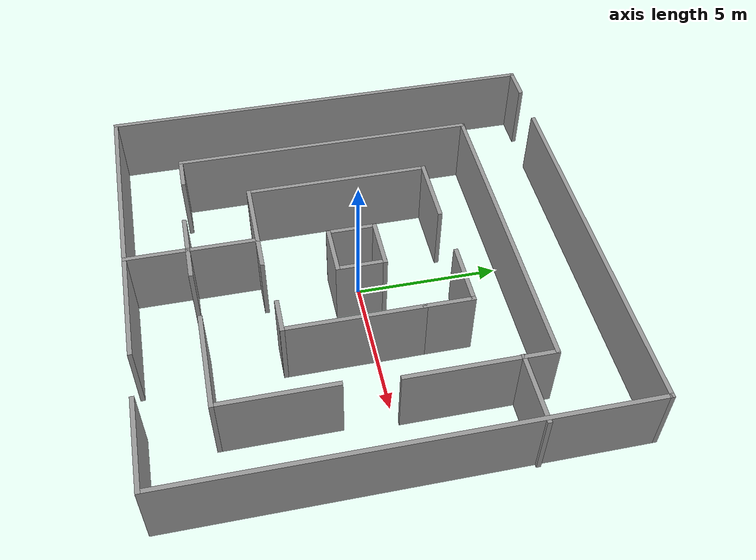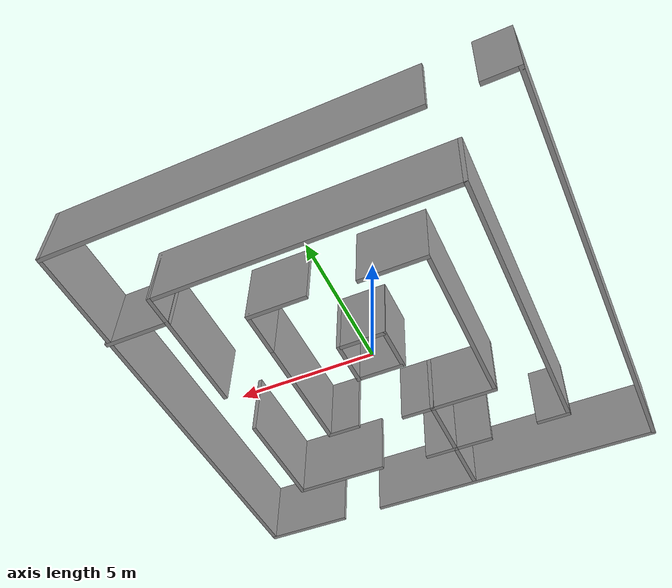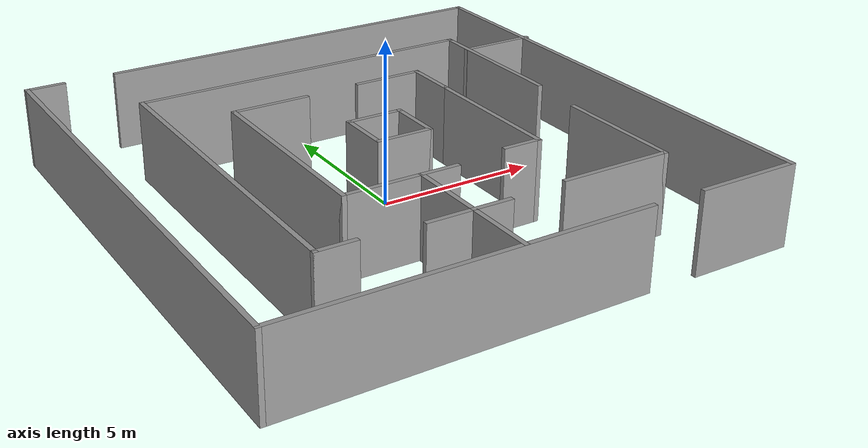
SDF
<?xml version='1.0'?>
<sdf version='1.6'>
  <model name='simple_maze'>
    <pose frame=''>0.056086 0.045725 0 0 -0 0</pose>
    <link name='Wall_0'>
      <collision name='Wall_0_Collision'>
        <geometry>
          <box>
            <size>1.25 0.15 2.5</size>
          </box>
        </geometry>
        <pose frame=''>0 0 1.25 0 -0 0</pose>
      </collision>
      <visual name='Wall_0_Visual'>
        <pose frame=''>0 0 1.25 0 -0 0</pose>
        <geometry>
          <box>
            <size>1.25 0.15 2.5</size>
          </box>
        </geometry>
        <material>
          <script>
            <uri>file://media/materials/scripts/gazebo.material</uri>
            <name>Gazebo/Grey</name>
          </script>
          <ambient>1 1 1 1</ambient>
        </material>
        <meta>
          <layer>0</layer>
        </meta>
      </visual>
      <pose frame=''>-7.32298 7.80815 0 0 -0 3.14159</pose>
    </link>
    <link name='Wall_1'>
      <collision name='Wall_1_Collision'>
        <geometry>
          <box>
            <size>15.75 0.15 2.5</size>
          </box>
        </geometry>
        <pose frame=''>0 0 1.25 0 -0 0</pose>
      </collision>
      <visual name='Wall_1_Visual'>
        <pose frame=''>0 0 1.25 0 -0 0</pose>
        <geometry>
          <box>
            <size>15.75 0.15 2.5</size>
          </box>
        </geometry>
        <material>
          <script>
            <uri>file://media/materials/scripts/gazebo.material</uri>
            <name>Gazebo/Grey</name>
          </script>
          <ambient>1 1 1 1</ambient>
        </material>
        <meta>
          <layer>0</layer>
        </meta>
      </visual>
      <pose frame=''>-7.87298 0.008147 0 0 -0 -1.5708</pose>
    </link>
    <link name='Wall_10'>
      <collision name='Wall_10_Collision'>
        <geometry>
          <box>
            <size>1.5 0.15 2.5</size>
          </box>
        </geometry>
        <pose frame=''>0 0 1.25 0 -0 0</pose>
      </collision>
      <visual name='Wall_10_Visual'>
        <pose frame=''>0 0 1.25 0 -0 0</pose>
        <geometry>
          <box>
            <size>1.5 0.15 2.5</size>
          </box>
        </geometry>
        <material>
          <script>
            <uri>file://media/materials/scripts/gazebo.material</uri>
            <name>Gazebo/Grey</name>
          </script>
          <ambient>1 1 1 1</ambient>
        </material>
        <meta>
          <layer>0</layer>
        </meta>
      </visual>
      <pose frame=''>-1.62087 -5.68541 0 0 -0 3.14159</pose>
    </link>
    <link name='Wall_12'>
      <collision name='Wall_12_Collision'>
        <geometry>
          <box>
            <size>1.25 0.15 2.5</size>
          </box>
        </geometry>
        <pose frame=''>0 0 1.25 0 -0 0</pose>
      </collision>
      <visual name='Wall_12_Visual'>
        <pose frame=''>0 0 1.25 0 -0 0</pose>
        <geometry>
          <box>
            <size>1.25 0.15 2.5</size>
          </box>
        </geometry>
        <material>
          <script>
            <uri>file://media/materials/scripts/gazebo.material</uri>
            <name>Gazebo/Grey</name>
          </script>
          <ambient>1 1 1 1</ambient>
        </material>
        <meta>
          <layer>0</layer>
        </meta>
      </visual>
      <pose frame=''>-0.395865 -5.68541 0 0 -0 0</pose>
    </link>
    <link name='Wall_14'>
      <collision name='Wall_14_Collision'>
        <geometry>
          <box>
            <size>3.5 0.15 2.5</size>
          </box>
        </geometry>
        <pose frame=''>0 0 1.25 0 -0 0</pose>
      </collision>
      <visual name='Wall_14_Visual'>
        <pose frame=''>0 0 1.25 0 -0 0</pose>
        <geometry>
          <box>
            <size>3.5 0.15 2.5</size>
          </box>
        </geometry>
        <material>
          <script>
            <uri>file://media/materials/scripts/gazebo.material</uri>
            <name>Gazebo/Grey</name>
          </script>
          <ambient>1 1 1 1</ambient>
        </material>
        <meta>
          <layer>0</layer>
        </meta>
      </visual>
      <pose frame=''>3.69745 -5.55725 0 0 -0 0</pose>
    </link>
    <link name='Wall_15'>
      <collision name='Wall_15_Collision'>
        <geometry>
          <box>
            <size>4 0.15 2.5</size>
          </box>
        </geometry>
        <pose frame=''>0 0 1.25 0 -0 0</pose>
      </collision>
      <visual name='Wall_15_Visual'>
        <pose frame=''>0 0 1.25 0 -0 0</pose>
        <geometry>
          <box>
            <size>4 0.15 2.5</size>
          </box>
        </geometry>
        <material>
          <script>
            <uri>file://media/materials/scripts/gazebo.material</uri>
            <name>Gazebo/Grey</name>
          </script>
          <ambient>1 1 1 1</ambient>
        </material>
        <meta>
          <layer>0</layer>
        </meta>
      </visual>
      <pose frame=''>5.37244 -3.63225 0 0 -0 1.5708</pose>
    </link>
    <link name='Wall_17'>
      <collision name='Wall_17_Collision'>
        <geometry>
          <box>
            <size>3.25 0.15 2.5</size>
          </box>
        </geometry>
        <pose frame=''>0 0 1.25 0 -0 0</pose>
      </collision>
      <visual name='Wall_17_Visual'>
        <pose frame=''>0 0 1.25 0 -0 0</pose>
        <geometry>
          <box>
            <size>3.25 0.15 2.5</size>
          </box>
        </geometry>
        <material>
          <script>
            <uri>file://media/materials/scripts/gazebo.material</uri>
            <name>Gazebo/Grey</name>
          </script>
          <ambient>1 1 1 1</ambient>
        </material>
        <meta>
          <layer>0</layer>
        </meta>
      </visual>
      <pose frame=''>6.21877 -7.80815 0 0 -0 0</pose>
    </link>
    <link name='Wall_18'>
      <collision name='Wall_18_Collision'>
        <geometry>
          <box>
            <size>15.75 0.15 2.5</size>
          </box>
        </geometry>
        <pose frame=''>0 0 1.25 0 -0 0</pose>
      </collision>
      <visual name='Wall_18_Visual'>
        <pose frame=''>0 0 1.25 0 -0 0</pose>
        <geometry>
          <box>
            <size>15.75 0.15 2.5</size>
          </box>
        </geometry>
        <material>
          <script>
            <uri>file://media/materials/scripts/gazebo.material</uri>
            <name>Gazebo/Grey</name>
          </script>
          <ambient>1 1 1 1</ambient>
        </material>
        <meta>
          <layer>0</layer>
        </meta>
      </visual>
      <pose frame=''>7.76877 -0.008147 0 0 -0 1.5708</pose>
    </link>
    <link name='Wall_19'>
      <collision name='Wall_19_Collision'>
        <geometry>
          <box>
            <size>13 0.15 2.5</size>
          </box>
        </geometry>
        <pose frame=''>0 0 1.25 0 -0 0</pose>
      </collision>
      <visual name='Wall_19_Visual'>
        <pose frame=''>0 0 1.25 0 -0 0</pose>
        <geometry>
          <box>
            <size>13 0.15 2.5</size>
          </box>
        </geometry>
        <material>
          <script>
            <uri>file://media/materials/scripts/gazebo.material</uri>
            <name>Gazebo/Grey</name>
          </script>
          <ambient>1 1 1 1</ambient>
        </material>
        <meta>
          <layer>0</layer>
        </meta>
      </visual>
      <pose frame=''>1.34377 7.79185 0 0 -0 3.14159</pose>
    </link>
    <link name='Wall_2'>
      <collision name='Wall_2_Collision'>
        <geometry>
          <box>
            <size>11 0.15 2.5</size>
          </box>
        </geometry>
        <pose frame=''>0 0 1.25 0 -0 0</pose>
      </collision>
      <visual name='Wall_2_Visual'>
        <pose frame=''>0 0 1.25 0 -0 0</pose>
        <geometry>
          <box>
            <size>11 0.15 2.5</size>
          </box>
        </geometry>
        <material>
          <script>
            <uri>file://media/materials/scripts/gazebo.material</uri>
            <name>Gazebo/Grey</name>
          </script>
          <ambient>1 1 1 1</ambient>
        </material>
        <meta>
          <layer>0</layer>
        </meta>
      </visual>
      <pose frame=''>-2.44798 -7.79185 0 0 -0 0</pose>
    </link>
    <link name='Wall_21'>
      <collision name='Wall_21_Collision'>
        <geometry>
          <box>
            <size>1.25 0.15 2.5</size>
          </box>
        </geometry>
        <pose frame=''>0 0 1.25 0 -0 0</pose>
      </collision>
      <visual name='Wall_21_Visual'>
        <pose frame=''>0 0 1.25 0 -0 0</pose>
        <geometry>
          <box>
            <size>1.25 0.15 2.5</size>
          </box>
        </geometry>
        <material>
          <script>
            <uri>file://media/materials/scripts/gazebo.material</uri>
            <name>Gazebo/Grey</name>
          </script>
          <ambient>1 1 1 1</ambient>
        </material>
        <meta>
          <layer>0</layer>
        </meta>
      </visual>
      <pose frame=''>-0.395865 -3.33541 0 0 -0 0</pose>
    </link>
    <link name='Wall_23'>
      <collision name='Wall_23_Collision'>
        <geometry>
          <box>
            <size>1.75 0.15 2.5</size>
          </box>
        </geometry>
        <pose frame=''>0 0 1.25 0 -0 0</pose>
      </collision>
      <visual name='Wall_23_Visual'>
        <pose frame=''>0 0 1.25 0 -0 0</pose>
        <geometry>
          <box>
            <size>1.75 0.15 2.5</size>
          </box>
        </geometry>
        <material>
          <script>
            <uri>file://media/materials/scripts/gazebo.material</uri>
            <name>Gazebo/Grey</name>
          </script>
          <ambient>1 1 1 1</ambient>
        </material>
        <meta>
          <layer>0</layer>
        </meta>
      </visual>
      <pose frame=''>-0.81203 -0.128461 0 0 -0 -1.5708</pose>
    </link>
    <link name='Wall_24'>
      <collision name='Wall_24_Collision'>
        <geometry>
          <box>
            <size>1.8 0.15 2.5</size>
          </box>
        </geometry>
        <pose frame=''>0 0 1.25 0 -0 0</pose>
      </collision>
      <visual name='Wall_24_Visual'>
        <pose frame=''>0 0 1.25 0 -0 0</pose>
        <geometry>
          <box>
            <size>1.8 0.15 2.5</size>
          </box>
        </geometry>
        <material>
          <script>
            <uri>file://media/materials/scripts/gazebo.material</uri>
            <name>Gazebo/Grey</name>
          </script>
          <ambient>1 1 1 1</ambient>
        </material>
        <meta>
          <layer>0</layer>
        </meta>
      </visual>
      <pose frame=''>0.03297 -0.928461 0 0 -0 0</pose>
    </link>
    <link name='Wall_25'>
      <collision name='Wall_25_Collision'>
        <geometry>
          <box>
            <size>1.75 0.15 2.5</size>
          </box>
        </geometry>
        <pose frame=''>0 0 1.25 0 -0 0</pose>
      </collision>
      <visual name='Wall_25_Visual'>
        <pose frame=''>0 0 1.25 0 -0 0</pose>
        <geometry>
          <box>
            <size>1.75 0.15 2.5</size>
          </box>
        </geometry>
        <material>
          <script>
            <uri>file://media/materials/scripts/gazebo.material</uri>
            <name>Gazebo/Grey</name>
          </script>
          <ambient>1 1 1 1</ambient>
        </material>
        <meta>
          <layer>0</layer>
        </meta>
      </visual>
      <pose frame=''>0.85797 -0.128461 0 0 -0 1.5708</pose>
    </link>
    <link name='Wall_26'>
      <collision name='Wall_26_Collision'>
        <geometry>
          <box>
            <size>1.8 0.15 2.5</size>
          </box>
        </geometry>
        <pose frame=''>0 0 1.25 0 -0 0</pose>
      </collision>
      <visual name='Wall_26_Visual'>
        <pose frame=''>0 0 1.25 0 -0 0</pose>
        <geometry>
          <box>
            <size>1.8 0.15 2.5</size>
          </box>
        </geometry>
        <material>
          <script>
            <uri>file://media/materials/scripts/gazebo.material</uri>
            <name>Gazebo/Grey</name>
          </script>
          <ambient>1 1 1 1</ambient>
        </material>
        <meta>
          <layer>0</layer>
        </meta>
      </visual>
      <pose frame=''>0.03297 0.671539 0 0 -0 3.14159</pose>
    </link>
    <link name='Wall_28'>
      <collision name='Wall_28_Collision'>
        <geometry>
          <box>
            <size>2.25 0.15 2.5</size>
          </box>
        </geometry>
        <pose frame=''>0 0 1.25 0 -0 0</pose>
      </collision>
      <visual name='Wall_28_Visual'>
        <pose frame=''>0 0 1.25 0 -0 0</pose>
        <geometry>
          <box>
            <size>2.25 0.15 2.5</size>
          </box>
        </geometry>
        <material>
          <script>
            <uri>file://media/materials/scripts/gazebo.material</uri>
            <name>Gazebo/Grey</name>
          </script>
          <ambient>1 1 1 1</ambient>
        </material>
        <meta>
          <layer>0</layer>
        </meta>
      </visual>
      <pose frame=''>1.94993 3.09917 0 0 -0 0</pose>
    </link>
    <link name='Wall_29'>
      <collision name='Wall_29_Collision'>
        <geometry>
          <box>
            <size>1.75 0.15 2.5</size>
          </box>
        </geometry>
        <pose frame=''>0 0 1.25 0 -0 0</pose>
      </collision>
      <visual name='Wall_29_Visual'>
        <pose frame=''>0 0 1.25 0 -0 0</pose>
        <geometry>
          <box>
            <size>1.75 0.15 2.5</size>
          </box>
        </geometry>
        <material>
          <script>
            <uri>file://media/materials/scripts/gazebo.material</uri>
            <name>Gazebo/Grey</name>
          </script>
          <ambient>1 1 1 1</ambient>
        </material>
        <meta>
          <layer>0</layer>
        </meta>
      </visual>
      <pose frame=''>2.99993 2.29917 0 0 -0 -1.5708</pose>
    </link>
    <link name='Wall_30'>
      <collision name='Wall_30_Collision'>
        <geometry>
          <box>
            <size>4.75 0.15 2.5</size>
          </box>
        </geometry>
        <pose frame=''>0 0 1.25 0 -0 0</pose>
      </collision>
      <visual name='Wall_30_Visual'>
        <pose frame=''>0 0 1.25 0 -0 0</pose>
        <geometry>
          <box>
            <size>4.75 0.15 2.5</size>
          </box>
        </geometry>
        <material>
          <script>
            <uri>file://media/materials/scripts/gazebo.material</uri>
            <name>Gazebo/Grey</name>
          </script>
          <ambient>1 1 1 1</ambient>
        </material>
        <meta>
          <layer>0</layer>
        </meta>
      </visual>
      <pose frame=''>2.99993 -0.800825 0 0 -0 -1.5708</pose>
    </link>
    <link name='Wall_31'>
      <collision name='Wall_31_Collision'>
        <geometry>
          <box>
            <size>1.25 0.15 2.5</size>
          </box>
        </geometry>
        <pose frame=''>0 0 1.25 0 -0 0</pose>
      </collision>
      <visual name='Wall_31_Visual'>
        <pose frame=''>0 0 1.25 0 -0 0</pose>
        <geometry>
          <box>
            <size>1.25 0.15 2.5</size>
          </box>
        </geometry>
        <material>
          <script>
            <uri>file://media/materials/scripts/gazebo.material</uri>
            <name>Gazebo/Grey</name>
          </script>
          <ambient>1 1 1 1</ambient>
        </material>
        <meta>
          <layer>0</layer>
        </meta>
      </visual>
      <pose frame=''>2.44993 -3.10082 0 0 -0 3.14159</pose>
    </link>
    <link name='Wall_33'>
      <collision name='Wall_33_Collision'>
        <geometry>
          <box>
            <size>1.25 0.15 2.5</size>
          </box>
        </geometry>
        <pose frame=''>0 0 1.25 0 -0 0</pose>
      </collision>
      <visual name='Wall_33_Visual'>
        <pose frame=''>0 0 1.25 0 -0 0</pose>
        <geometry>
          <box>
            <size>1.25 0.15 2.5</size>
          </box>
        </geometry>
        <material>
          <script>
            <uri>file://media/materials/scripts/gazebo.material</uri>
            <name>Gazebo/Grey</name>
          </script>
          <ambient>1 1 1 1</ambient>
        </material>
        <meta>
          <layer>0</layer>
        </meta>
      </visual>
      <pose frame=''>-4.76062 -5.56245 0 0 -0 3.14159</pose>
    </link>
    <link name='Wall_34'>
      <collision name='Wall_34_Collision'>
        <geometry>
          <box>
            <size>10.75 0.15 2.5</size>
          </box>
        </geometry>
        <pose frame=''>0 0 1.25 0 -0 0</pose>
      </collision>
      <visual name='Wall_34_Visual'>
        <pose frame=''>0 0 1.25 0 -0 0</pose>
        <geometry>
          <box>
            <size>10.75 0.15 2.5</size>
          </box>
        </geometry>
        <material>
          <script>
            <uri>file://media/materials/scripts/gazebo.material</uri>
            <name>Gazebo/Grey</name>
          </script>
          <ambient>1 1 1 1</ambient>
        </material>
        <meta>
          <layer>0</layer>
        </meta>
      </visual>
      <pose frame=''>-5.31062 -0.262447 0 0 -0 1.5708</pose>
    </link>
    <link name='Wall_35'>
      <collision name='Wall_35_Collision'>
        <geometry>
          <box>
            <size>11 0.15 2.5</size>
          </box>
        </geometry>
        <pose frame=''>0 0 1.25 0 -0 0</pose>
      </collision>
      <visual name='Wall_35_Visual'>
        <pose frame=''>0 0 1.25 0 -0 0</pose>
        <geometry>
          <box>
            <size>11 0.15 2.5</size>
          </box>
        </geometry>
        <material>
          <script>
            <uri>file://media/materials/scripts/gazebo.material</uri>
            <name>Gazebo/Grey</name>
          </script>
          <ambient>1 1 1 1</ambient>
        </material>
        <meta>
          <layer>0</layer>
        </meta>
      </visual>
      <pose frame=''>0.114377 5.03755 0 0 -0 0</pose>
    </link>
    <link name='Wall_36'>
      <collision name='Wall_36_Collision'>
        <geometry>
          <box>
            <size>5 0.15 2.5</size>
          </box>
        </geometry>
        <pose frame=''>0 0 1.25 0 -0 0</pose>
      </collision>
      <visual name='Wall_36_Visual'>
        <pose frame=''>0 0 1.25 0 -0 0</pose>
        <geometry>
          <box>
            <size>5 0.15 2.5</size>
          </box>
        </geometry>
        <material>
          <script>
            <uri>file://media/materials/scripts/gazebo.material</uri>
            <name>Gazebo/Grey</name>
          </script>
          <ambient>1 1 1 1</ambient>
        </material>
        <meta>
          <layer>0</layer>
        </meta>
      </visual>
      <pose frame=''>5.53938 2.61255 0 0 -0 -1.5708</pose>
    </link>
    <link name='Wall_38'>
      <collision name='Wall_38_Collision'>
        <geometry>
          <box>
            <size>2.5 0.15 2.5</size>
          </box>
        </geometry>
        <pose frame=''>0 0 1.25 0 -0 0</pose>
      </collision>
      <visual name='Wall_38_Visual'>
        <pose frame=''>0 0 1.25 0 -0 0</pose>
        <geometry>
          <box>
            <size>2.5 0.15 2.5</size>
          </box>
        </geometry>
        <material>
          <script>
            <uri>file://media/materials/scripts/gazebo.material</uri>
            <name>Gazebo/Grey</name>
          </script>
          <ambient>1 1 1 1</ambient>
        </material>
        <meta>
          <layer>0</layer>
        </meta>
      </visual>
      <pose frame=''>6.69798 3.95955 0 0 -0 0</pose>
    </link>
    <link name='Wall_4'>
      <collision name='Wall_4_Collision'>
        <geometry>
          <box>
            <size>2.25 0.15 2.5</size>
          </box>
        </geometry>
        <pose frame=''>0 0 1.25 0 -0 0</pose>
      </collision>
      <visual name='Wall_4_Visual'>
        <pose frame=''>0 0 1.25 0 -0 0</pose>
        <geometry>
          <box>
            <size>2.25 0.15 2.5</size>
          </box>
        </geometry>
        <material>
          <script>
            <uri>file://media/materials/scripts/gazebo.material</uri>
            <name>Gazebo/Grey</name>
          </script>
          <ambient>1 1 1 1</ambient>
        </material>
        <meta>
          <layer>0</layer>
        </meta>
      </visual>
      <pose frame=''>-0.945865 -6.73541 0 0 -0 1.5708</pose>
    </link>
    <link name='Wall_5'>
      <collision name='Wall_5_Collision'>
        <geometry>
          <box>
            <size>2.5 0.15 2.5</size>
          </box>
        </geometry>
        <pose frame=''>0 0 1.25 0 -0 0</pose>
      </collision>
      <visual name='Wall_5_Visual'>
        <pose frame=''>0 0 1.25 0 -0 0</pose>
        <geometry>
          <box>
            <size>2.5 0.15 2.5</size>
          </box>
        </geometry>
        <material>
          <script>
            <uri>file://media/materials/scripts/gazebo.material</uri>
            <name>Gazebo/Grey</name>
          </script>
          <ambient>1 1 1 1</ambient>
        </material>
        <meta>
          <layer>0</layer>
        </meta>
      </visual>
      <pose frame=''>-0.945865 -4.51041 0 0 -0 1.5708</pose>
    </link>
    <link name='Wall_6'>
      <collision name='Wall_6_Collision'>
        <geometry>
          <box>
            <size>2.5 0.15 2.5</size>
          </box>
        </geometry>
        <pose frame=''>0 0 1.25 0 -0 0</pose>
      </collision>
      <visual name='Wall_6_Visual'>
        <pose frame=''>0 0 1.25 0 -0 0</pose>
        <geometry>
          <box>
            <size>2.5 0.15 2.5</size>
          </box>
        </geometry>
        <material>
          <script>
            <uri>file://media/materials/scripts/gazebo.material</uri>
            <name>Gazebo/Grey</name>
          </script>
          <ambient>1 1 1 1</ambient>
        </material>
        <meta>
          <layer>0</layer>
        </meta>
      </visual>
      <pose frame=''>-2.12086 -3.33541 0 0 -0 3.14159</pose>
    </link>
    <link name='Wall_7'>
      <collision name='Wall_7_Collision'>
        <geometry>
          <box>
            <size>6.5 0.15 2.5</size>
          </box>
        </geometry>
        <pose frame=''>0 0 1.25 0 -0 0</pose>
      </collision>
      <visual name='Wall_7_Visual'>
        <pose frame=''>0 0 1.25 0 -0 0</pose>
        <geometry>
          <box>
            <size>6.5 0.15 2.5</size>
          </box>
        </geometry>
        <material>
          <script>
            <uri>file://media/materials/scripts/gazebo.material</uri>
            <name>Gazebo/Grey</name>
          </script>
          <ambient>1 1 1 1</ambient>
        </material>
        <meta>
          <layer>0</layer>
        </meta>
      </visual>
      <pose frame=''>-3.29587 -0.160412 0 0 -0 1.5708</pose>
    </link>
    <link name='Wall_8'>
      <collision name='Wall_8_Collision'>
        <geometry>
          <box>
            <size>2.5 0.15 2.5</size>
          </box>
        </geometry>
        <pose frame=''>0 0 1.25 0 -0 0</pose>
      </collision>
      <visual name='Wall_8_Visual'>
        <pose frame=''>0 0 1.25 0 -0 0</pose>
        <geometry>
          <box>
            <size>2.5 0.15 2.5</size>
          </box>
        </geometry>
        <material>
          <script>
            <uri>file://media/materials/scripts/gazebo.material</uri>
            <name>Gazebo/Grey</name>
          </script>
          <ambient>1 1 1 1</ambient>
        </material>
        <meta>
          <layer>0</layer>
        </meta>
      </visual>
      <pose frame=''>-2.12086 3.01459 0 0 -0 0</pose>
    </link>
    <static>1</static>
  </model>
</sdf>
